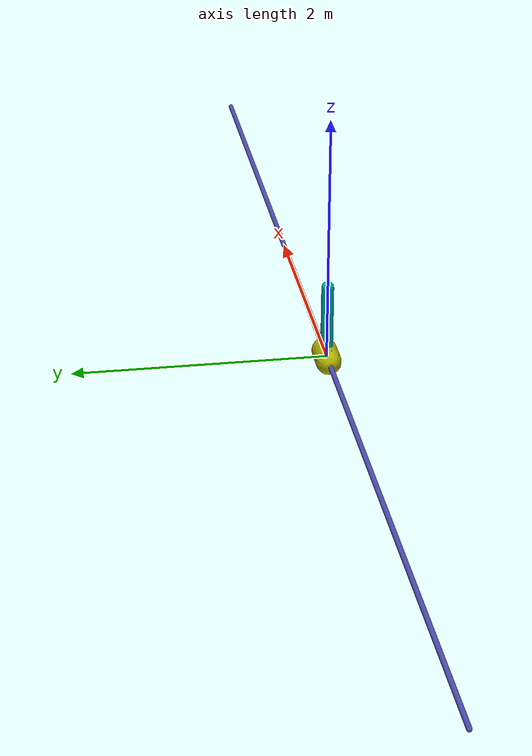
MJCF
<mujoco model="inverted pendulum">
	<compiler inertiafromgeom="true"/>
	<default>
		<joint armature="0" damping="1" limited="true"/>
		<geom contype="0" friction="1 0.1 0.1" rgba="0.7 0.7 0 1"/>
		<tendon/>
		<motor ctrlrange="-3 3"/>
	</default>
	<option gravity="0 0 -9.81" integrator="RK4" timestep="0.001"/>
	<size nstack="3000"/>
	<worldbody>
		<!--geom name="ground" type="plane" pos="0 0 0" /-->
		<geom name="rail" pos="0 0 0" quat="0.707 0 0.707 0" rgba="0.3 0.3 0.7 1" size="0.02 5" type="capsule"/>
		<body name="cart" pos="0 0 0">
			<joint axis="-1 0 0" limited="true" name="slider" pos="0 0 0" range="-5 5" type="slide"/>
			<geom name="cart" pos="0 0 0" quat="0.707 0 0.707 0" size="0.1 0.1" type="capsule"/>
			<body name="pole" pos="0 0 0">
				<joint axis="0 1 0" name="hinge" pos="0 0 0" range="-1080 1080" type="hinge"/>
				<geom name="cpole" type="capsule" size="0.049 0.3" pos="0 0 0.3" axisangle="1 0 0 0" rgba="0 0.7 0.7 1"/>
			</body>
		</body>
	</worldbody>
	<actuator>
		<motor ctrlrange="-10 10" joint="slider" gear="1" name="slide"/>

	</actuator>
  <keyframe>
    <key name="up"
      qpos="0 0"
      qvel="0 0"
    />
  </keyframe>
</mujoco>
